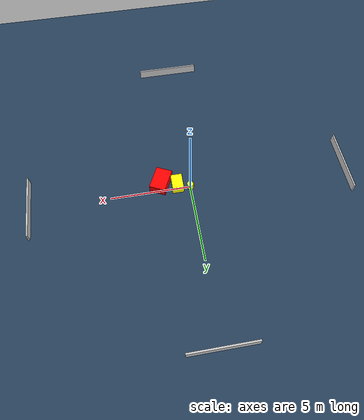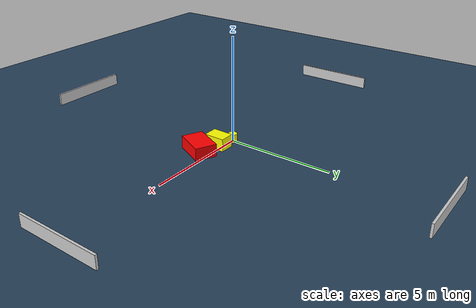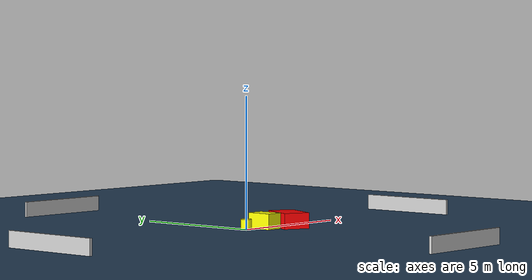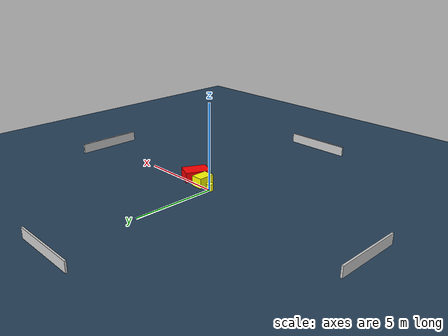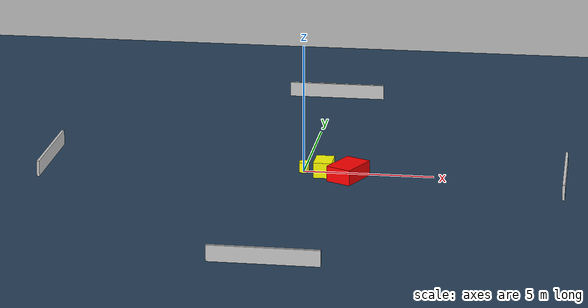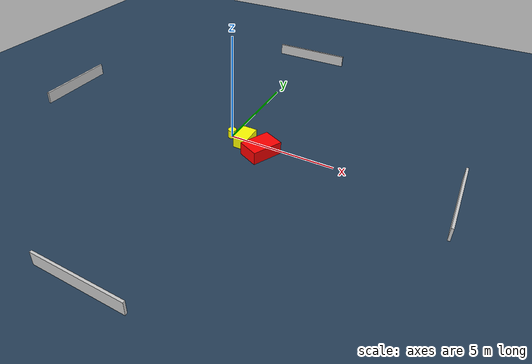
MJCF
<?xml version="1.0" ?>
<mujoco model="generated_environment">
  <option timestep="0.01" integrator="RK4" cone="elliptic"/>
  <default>
    <geom density="1"/>
  </default>
  <asset>
    <texture builtin="gradient" height="3072" name="skybox" rgb1="0.3 0.5 0.7" rgb2="0 0 0" type="skybox" width="512"/>
    <texture builtin="checker" height="300" name="groundplane" rgb1="0.2 0.3 0.4" rgb2="0.1 0.2 0.3" type="2d" width="300"/>
    <material name="groundplane" reflectance="0.2" texrepeat="5 5" texture="groundplane"/>
  </asset>
  <worldbody>
    <light dir="0 0 -1" directional="true" pos="0 0 1.5"/>
    <geom condim="3" friction="0.5 0.005 0.001" material="groundplane" name="floor" pos="0 0 0" size="0 0 0.05" type="plane"/>
    <body name="walls">
      <geom name="wall_1" condim="4" pos="-10.0 0.0 0.3" rgba="0.800000011920929 0.800000011920929 0.800000011920929 1.0" size="0.05 2.0 0.3" type="box"/>
      <geom name="wall_2" condim="4" pos="10.0 0.0 0.3" rgba="0.800000011920929 0.800000011920929 0.800000011920929 1.0" size="0.05 2.0 0.3" type="box"/>
      <geom name="wall_3" condim="4" pos="0.0 -10.0 0.3" rgba="0.800000011920929 0.800000011920929 0.800000011920929 1.0" size="2.0 0.05 0.3" type="box"/>
      <geom name="wall_4" condim="4" pos="0.0 10.0 0.3" rgba="0.800000011920929 0.800000011920929 0.800000011920929 1.0" size="2.0 0.05 0.3" type="box"/>
    </body>
    <body name="robot">
      <joint name="joint_x" type="slide" pos="0 0 0" axis="1 0 0"/>
      <joint name="joint_y" type="slide" pos="0 0 0" axis="0 1 0"/>
      <geom name="robot" type="cylinder" pos="0.0 0.0 0.2" size="0.2 0.2 0.0" mass="5.0" friction="1.0 0.005 0.0001" condim="4" rgba="1.0 1.0 0.0 1.0"/>
    </body>
    <body name="obstacle_1_movable">
      <geom name="obstacle_1_movable" condim="4" pos="0.8050261509447959 -0.22469684934953854 0.3" euler="0 0 359.82078021998694" friction="0.0 0.005 0.001" rgba="1.0 1.0 0.0 1.0" size="0.35208736456571466 0.4917170500178628 0.3" type="box" mass="0.1"/>
      <joint type="free"/>
    </body>
    <body name="obstacle_2_static">
      <geom name="obstacle_2_static" condim="4" pos="1.7855843717507345 -0.5728477488315197 0.3" euler="0 0 154.41589800712137" friction="0.0 0.005 0.001" rgba="1.0 0.0 0.0 1.0" size="0.5054080431582869 0.7405862766828215 0.3" type="box"/>
    </body>
  </worldbody>
  <actuator>
    <motor name="actuator_x" joint="joint_x" gear="1" ctrlrange="-1 1"/>
    <motor name="actuator_y" joint="joint_y" gear="1" ctrlrange="-1 1"/>
  </actuator>
</mujoco>
